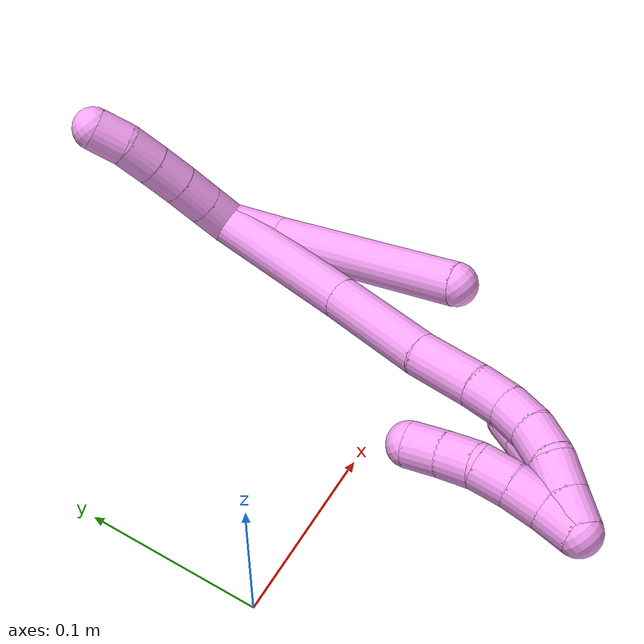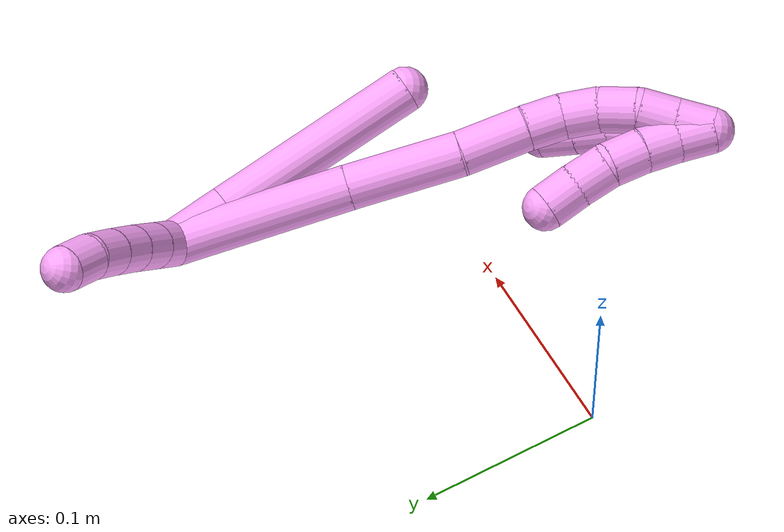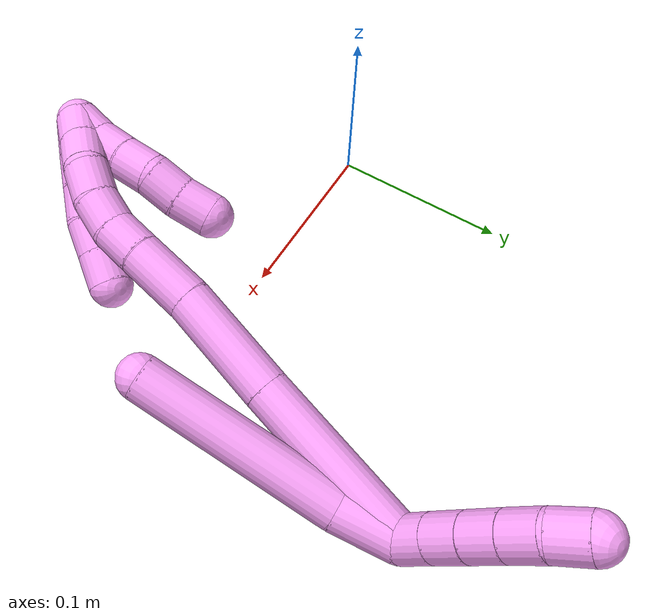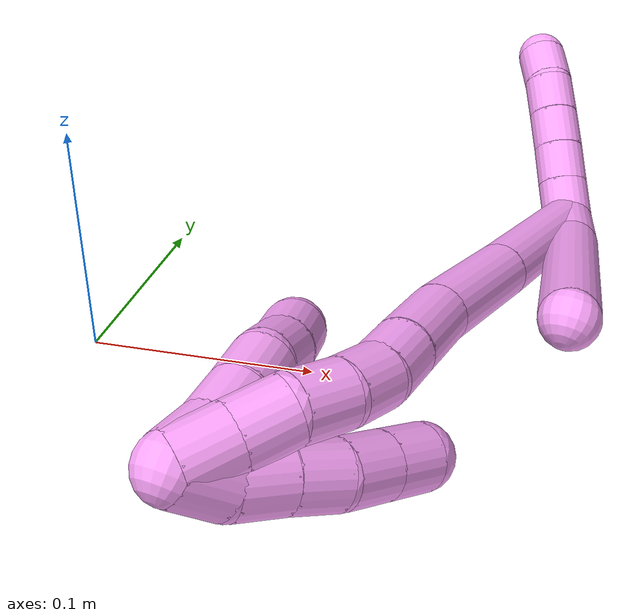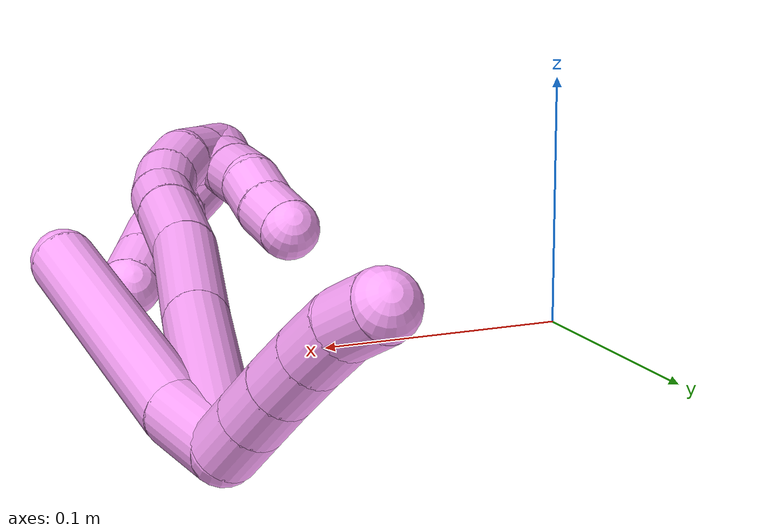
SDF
<sdf version="1.7">
 <world name="default">
  <model name="4">
   <static>0</static>
   <link name="4">
    <collision name="collision-cylinder-e_1_2_8">
     <pose>-0.000185 -0.012068 -0.012095 2.3573 -0.010851 -0.026236</pose>
     <geometry><cylinder><radius>0.0125</radius><length>0.034174</length></cylinder></geometry>
     <surface>
      <friction><ode><mu>1.16</mu><mu2>1.16</mu2><slip1>0</slip1><slip2>0</slip2></ode></friction>
      <contact><ode><kp>1e+06</kp><kd>1</kd><max_vel>0</max_vel><min_depth>0.001</min_depth></ode></contact>
     </surface>
    </collision>
    <visual name="visual-cylinder-e_1_2_8">
     <pose>-0.000185 -0.012068 -0.012095 2.3573 -0.010851 -0.026236</pose>
     <geometry><cylinder><radius>0.0125</radius><length>0.034174</length></cylinder></geometry>
     <material><ambient>1 0.65098 0.996078 1</ambient></material>
    </visual>
    <collision name="collision-cylinder-e_2_8_6">
     <pose>-0.008045 -0.068562 -0.060541 2.25658 -0.1329 -0.279057</pose>
     <geometry><cylinder><radius>0.0125</radius><length>0.115826</length></cylinder></geometry>
     <surface>
      <friction><ode><mu>1.16</mu><mu2>1.16</mu2><slip1>0</slip1><slip2>0</slip2></ode></friction>
      <contact><ode><kp>1e+06</kp><kd>1</kd><max_vel>0</max_vel><min_depth>0.001</min_depth></ode></contact>
     </surface>
    </collision>
    <visual name="visual-cylinder-e_2_8_6">
     <pose>-0.008045 -0.068562 -0.060541 2.25658 -0.1329 -0.279057</pose>
     <geometry><cylinder><radius>0.0125</radius><length>0.115826</length></cylinder></geometry>
     <material><ambient>1 0.65098 0.996078 1</ambient></material>
    </visual>
    <collision name="collision-cylinder-e_1_2_9">
     <pose>-0.00395 -0.00025 0.009183 0.027267 -0.406071 -0.005614</pose>
     <geometry><cylinder><radius>0.0125</radius><length>0.02</length></cylinder></geometry>
     <surface>
      <friction><ode><mu>1.16</mu><mu2>1.16</mu2><slip1>0</slip1><slip2>0</slip2></ode></friction>
      <contact><ode><kp>1e+06</kp><kd>1</kd><max_vel>0</max_vel><min_depth>0.001</min_depth></ode></contact>
     </surface>
    </collision>
    <visual name="visual-cylinder-e_1_2_9">
     <pose>-0.00395 -0.00025 0.009183 0.027267 -0.406071 -0.005614</pose>
     <geometry><cylinder><radius>0.0125</radius><length>0.02</length></cylinder></geometry>
     <material><ambient>1 0.65098 0.996078 1</ambient></material>
    </visual>
    <collision name="collision-cylinder-e_2_9_10">
     <pose>-0.011754 -0.00069 0.027592 0.020439 -0.395678 -0.004097</pose>
     <geometry><cylinder><radius>0.0125</radius><length>0.02</length></cylinder></geometry>
     <surface>
      <friction><ode><mu>1.16</mu><mu2>1.16</mu2><slip1>0</slip1><slip2>0</slip2></ode></friction>
      <contact><ode><kp>1e+06</kp><kd>1</kd><max_vel>0</max_vel><min_depth>0.001</min_depth></ode></contact>
     </surface>
    </collision>
    <visual name="visual-cylinder-e_2_9_10">
     <pose>-0.011754 -0.00069 0.027592 0.020439 -0.395678 -0.004097</pose>
     <geometry><cylinder><radius>0.0125</radius><length>0.02</length></cylinder></geometry>
     <material><ambient>1 0.65098 0.996078 1</ambient></material>
    </visual>
    <collision name="collision-cylinder-e_3_10_11">
     <pose>-0.01954 -0.000807 0.046012 -0.007706 -0.404037 0.001578</pose>
     <geometry><cylinder><radius>0.0125</radius><length>0.02</length></cylinder></geometry>
     <surface>
      <friction><ode><mu>1.16</mu><mu2>1.16</mu2><slip1>0</slip1><slip2>0</slip2></ode></friction>
      <contact><ode><kp>1e+06</kp><kd>1</kd><max_vel>0</max_vel><min_depth>0.001</min_depth></ode></contact>
     </surface>
    </collision>
    <visual name="visual-cylinder-e_3_10_11">
     <pose>-0.01954 -0.000807 0.046012 -0.007706 -0.404037 0.001578</pose>
     <geometry><cylinder><radius>0.0125</radius><length>0.02</length></cylinder></geometry>
     <material><ambient>1 0.65098 0.996078 1</ambient></material>
    </visual>
    <collision name="collision-cylinder-e_4_11_12">
     <pose>-0.027371 -0.000367 0.064408 -0.040104 -0.400566 0.008142</pose>
     <geometry><cylinder><radius>0.0125</radius><length>0.02</length></cylinder></geometry>
     <surface>
      <friction><ode><mu>1.16</mu><mu2>1.16</mu2><slip1>0</slip1><slip2>0</slip2></ode></friction>
      <contact><ode><kp>1e+06</kp><kd>1</kd><max_vel>0</max_vel><min_depth>0.001</min_depth></ode></contact>
     </surface>
    </collision>
    <visual name="visual-cylinder-e_4_11_12">
     <pose>-0.027371 -0.000367 0.064408 -0.040104 -0.400566 0.008142</pose>
     <geometry><cylinder><radius>0.0125</radius><length>0.02</length></cylinder></geometry>
     <material><ambient>1 0.65098 0.996078 1</ambient></material>
    </visual>
    <collision name="collision-cylinder-e_5_12_5">
     <pose>-0.034917 0.002508 0.082576 -0.272476 -0.3733 0.051766</pose>
     <geometry><cylinder><radius>0.0125</radius><length>0.02</length></cylinder></geometry>
     <surface>
      <friction><ode><mu>1.16</mu><mu2>1.16</mu2><slip1>0</slip1><slip2>0</slip2></ode></friction>
      <contact><ode><kp>1e+06</kp><kd>1</kd><max_vel>0</max_vel><min_depth>0.001</min_depth></ode></contact>
     </surface>
    </collision>
    <visual name="visual-cylinder-e_5_12_5">
     <pose>-0.034917 0.002508 0.082576 -0.272476 -0.3733 0.051766</pose>
     <geometry><cylinder><radius>0.0125</radius><length>0.02</length></cylinder></geometry>
     <material><ambient>1 0.65098 0.996078 1</ambient></material>
    </visual>
    <collision name="collision-cylinder-e_1_2_13">
     <pose>-0.018702 -0.03044 -0.033593 2.4054 -0.391274 -0.949309</pose>
     <geometry><cylinder><radius>0.0125</radius><length>0.098078</length></cylinder></geometry>
     <surface>
      <friction><ode><mu>1.16</mu><mu2>1.16</mu2><slip1>0</slip1><slip2>0</slip2></ode></friction>
      <contact><ode><kp>1e+06</kp><kd>1</kd><max_vel>0</max_vel><min_depth>0.001</min_depth></ode></contact>
     </surface>
    </collision>
    <visual name="visual-cylinder-e_1_2_13">
     <pose>-0.018702 -0.03044 -0.033593 2.4054 -0.391274 -0.949309</pose>
     <geometry><cylinder><radius>0.0125</radius><length>0.098078</length></cylinder></geometry>
     <material><ambient>1 0.65098 0.996078 1</ambient></material>
    </visual>
    <collision name="collision-cylinder-e_2_13_14">
     <pose>-0.04994 -0.080026 -0.088587 2.41173 -0.411637 -1.00025</pose>
     <geometry><cylinder><radius>0.0125</radius><length>0.062667</length></cylinder></geometry>
     <surface>
      <friction><ode><mu>1.16</mu><mu2>1.16</mu2><slip1>0</slip1><slip2>0</slip2></ode></friction>
      <contact><ode><kp>1e+06</kp><kd>1</kd><max_vel>0</max_vel><min_depth>0.001</min_depth></ode></contact>
     </surface>
    </collision>
    <visual name="visual-cylinder-e_2_13_14">
     <pose>-0.04994 -0.080026 -0.088587 2.41173 -0.411637 -1.00025</pose>
     <geometry><cylinder><radius>0.0125</radius><length>0.062667</length></cylinder></geometry>
     <material><ambient>1 0.65098 0.996078 1</ambient></material>
    </visual>
    <collision name="collision-cylinder-e_3_14_15">
     <pose>-0.068092 -0.111199 -0.122951 2.39366 -0.307436 -0.752066</pose>
     <geometry><cylinder><radius>0.0125</radius><length>0.037105</length></cylinder></geometry>
     <surface>
      <friction><ode><mu>1.16</mu><mu2>1.16</mu2><slip1>0</slip1><slip2>0</slip2></ode></friction>
      <contact><ode><kp>1e+06</kp><kd>1</kd><max_vel>0</max_vel><min_depth>0.001</min_depth></ode></contact>
     </surface>
    </collision>
    <visual name="visual-cylinder-e_3_14_15">
     <pose>-0.068092 -0.111199 -0.122951 2.39366 -0.307436 -0.752066</pose>
     <geometry><cylinder><radius>0.0125</radius><length>0.037105</length></cylinder></geometry>
     <material><ambient>1 0.65098 0.996078 1</ambient></material>
    </visual>
    <collision name="collision-cylinder-e_4_15_16">
     <pose>-0.076969 -0.129479 -0.143641 2.46125 -0.317216 -0.848922</pose>
     <geometry><cylinder><radius>0.0125</radius><length>0.020924</length></cylinder></geometry>
     <surface>
      <friction><ode><mu>1.16</mu><mu2>1.16</mu2><slip1>0</slip1><slip2>0</slip2></ode></friction>
      <contact><ode><kp>1e+06</kp><kd>1</kd><max_vel>0</max_vel><min_depth>0.001</min_depth></ode></contact>
     </surface>
    </collision>
    <visual name="visual-cylinder-e_4_15_16">
     <pose>-0.076969 -0.129479 -0.143641 2.46125 -0.317216 -0.848922</pose>
     <geometry><cylinder><radius>0.0125</radius><length>0.020924</length></cylinder></geometry>
     <material><ambient>1 0.65098 0.996078 1</ambient></material>
    </visual>
    <collision name="collision-cylinder-e_5_16_17">
     <pose>-0.085562 -0.14124 -0.157981 2.44706 -0.554446 -1.33252</pose>
     <geometry><cylinder><radius>0.0125</radius><length>0.020247</length></cylinder></geometry>
     <surface>
      <friction><ode><mu>1.16</mu><mu2>1.16</mu2><slip1>0</slip1><slip2>0</slip2></ode></friction>
      <contact><ode><kp>1e+06</kp><kd>1</kd><max_vel>0</max_vel><min_depth>0.001</min_depth></ode></contact>
     </surface>
    </collision>
    <visual name="visual-cylinder-e_5_16_17">
     <pose>-0.085562 -0.14124 -0.157981 2.44706 -0.554446 -1.33252</pose>
     <geometry><cylinder><radius>0.0125</radius><length>0.020247</length></cylinder></geometry>
     <material><ambient>1 0.65098 0.996078 1</ambient></material>
    </visual>
    <collision name="collision-cylinder-e_6_17_18">
     <pose>-0.098031 -0.150857 -0.170982 2.57 -0.754536 -1.86545</pose>
     <geometry><cylinder><radius>0.0125</radius><length>0.020847</length></cylinder></geometry>
     <surface>
      <friction><ode><mu>1.16</mu><mu2>1.16</mu2><slip1>0</slip1><slip2>0</slip2></ode></friction>
      <contact><ode><kp>1e+06</kp><kd>1</kd><max_vel>0</max_vel><min_depth>0.001</min_depth></ode></contact>
     </surface>
    </collision>
    <visual name="visual-cylinder-e_6_17_18">
     <pose>-0.098031 -0.150857 -0.170982 2.57 -0.754536 -1.86545</pose>
     <geometry><cylinder><radius>0.0125</radius><length>0.020847</length></cylinder></geometry>
     <material><ambient>1 0.65098 0.996078 1</ambient></material>
    </visual>
    <collision name="collision-cylinder-e_7_18_19">
     <pose>-0.111808 -0.156167 -0.184782 2.98089 -0.723803 -2.72244</pose>
     <geometry><cylinder><radius>0.0125</radius><length>0.020044</length></cylinder></geometry>
     <surface>
      <friction><ode><mu>1.16</mu><mu2>1.16</mu2><slip1>0</slip1><slip2>0</slip2></ode></friction>
      <contact><ode><kp>1e+06</kp><kd>1</kd><max_vel>0</max_vel><min_depth>0.001</min_depth></ode></contact>
     </surface>
    </collision>
    <visual name="visual-cylinder-e_7_18_19">
     <pose>-0.111808 -0.156167 -0.184782 2.98089 -0.723803 -2.72244</pose>
     <geometry><cylinder><radius>0.0125</radius><length>0.020044</length></cylinder></geometry>
     <material><ambient>1 0.65098 0.996078 1</ambient></material>
    </visual>
    <collision name="collision-cylinder-e_8_19_1">
     <pose>-0.125084 -0.158698 -0.199613 2.96426 -0.72218 -2.67921</pose>
     <geometry><cylinder><radius>0.0125</radius><length>0.020089</length></cylinder></geometry>
     <surface>
      <friction><ode><mu>1.16</mu><mu2>1.16</mu2><slip1>0</slip1><slip2>0</slip2></ode></friction>
      <contact><ode><kp>1e+06</kp><kd>1</kd><max_vel>0</max_vel><min_depth>0.001</min_depth></ode></contact>
     </surface>
    </collision>
    <visual name="visual-cylinder-e_8_19_1">
     <pose>-0.125084 -0.158698 -0.199613 2.96426 -0.72218 -2.67921</pose>
     <geometry><cylinder><radius>0.0125</radius><length>0.020089</length></cylinder></geometry>
     <material><ambient>1 0.65098 0.996078 1</ambient></material>
    </visual>
    <collision name="collision-cylinder-e_1_1_20">
     <pose>-0.128371 -0.154489 -0.199411 -0.628499 0.341946 -0.112117</pose>
     <geometry><cylinder><radius>0.0125</radius><length>0.02</length></cylinder></geometry>
     <surface>
      <friction><ode><mu>1.16</mu><mu2>1.16</mu2><slip1>0</slip1><slip2>0</slip2></ode></friction>
      <contact><ode><kp>1e+06</kp><kd>1</kd><max_vel>0</max_vel><min_depth>0.001</min_depth></ode></contact>
     </surface>
    </collision>
    <visual name="visual-cylinder-e_1_1_20">
     <pose>-0.128371 -0.154489 -0.199411 -0.628499 0.341946 -0.112117</pose>
     <geometry><cylinder><radius>0.0125</radius><length>0.02</length></cylinder></geometry>
     <material><ambient>1 0.65098 0.996078 1</ambient></material>
    </visual>
    <collision name="collision-cylinder-e_2_20_21">
     <pose>-0.123109 -0.143611 -0.183553 -0.575069 0.192075 -0.056962</pose>
     <geometry><cylinder><radius>0.0125</radius><length>0.02</length></cylinder></geometry>
     <surface>
      <friction><ode><mu>1.16</mu><mu2>1.16</mu2><slip1>0</slip1><slip2>0</slip2></ode></friction>
      <contact><ode><kp>1e+06</kp><kd>1</kd><max_vel>0</max_vel><min_depth>0.001</min_depth></ode></contact>
     </surface>
    </collision>
    <visual name="visual-cylinder-e_2_20_21">
     <pose>-0.123109 -0.143611 -0.183553 -0.575069 0.192075 -0.056962</pose>
     <geometry><cylinder><radius>0.0125</radius><length>0.02</length></cylinder></geometry>
     <material><ambient>1 0.65098 0.996078 1</ambient></material>
    </visual>
    <collision name="collision-cylinder-e_3_21_22">
     <pose>-0.11976 -0.132276 -0.167443 -0.650849 0.144457 -0.048818</pose>
     <geometry><cylinder><radius>0.0125</radius><length>0.02</length></cylinder></geometry>
     <surface>
      <friction><ode><mu>1.16</mu><mu2>1.16</mu2><slip1>0</slip1><slip2>0</slip2></ode></friction>
      <contact><ode><kp>1e+06</kp><kd>1</kd><max_vel>0</max_vel><min_depth>0.001</min_depth></ode></contact>
     </surface>
    </collision>
    <visual name="visual-cylinder-e_3_21_22">
     <pose>-0.11976 -0.132276 -0.167443 -0.650849 0.144457 -0.048818</pose>
     <geometry><cylinder><radius>0.0125</radius><length>0.02</length></cylinder></geometry>
     <material><ambient>1 0.65098 0.996078 1</ambient></material>
    </visual>
    <collision name="collision-cylinder-e_4_22_23">
     <pose>-0.116096 -0.118389 -0.153846 -0.943277 0.22433 -0.114771</pose>
     <geometry><cylinder><radius>0.0125</radius><length>0.02</length></cylinder></geometry>
     <surface>
      <friction><ode><mu>1.16</mu><mu2>1.16</mu2><slip1>0</slip1><slip2>0</slip2></ode></friction>
      <contact><ode><kp>1e+06</kp><kd>1</kd><max_vel>0</max_vel><min_depth>0.001</min_depth></ode></contact>
     </surface>
    </collision>
    <visual name="visual-cylinder-e_4_22_23">
     <pose>-0.116096 -0.118389 -0.153846 -0.943277 0.22433 -0.114771</pose>
     <geometry><cylinder><radius>0.0125</radius><length>0.02</length></cylinder></geometry>
     <material><ambient>1 0.65098 0.996078 1</ambient></material>
    </visual>
    <collision name="collision-cylinder-e_5_23_4">
     <pose>-0.113006 -0.102767 -0.141836 -0.888128 0.08666 -0.041249</pose>
     <geometry><cylinder><radius>0.0125</radius><length>0.02</length></cylinder></geometry>
     <surface>
      <friction><ode><mu>1.16</mu><mu2>1.16</mu2><slip1>0</slip1><slip2>0</slip2></ode></friction>
      <contact><ode><kp>1e+06</kp><kd>1</kd><max_vel>0</max_vel><min_depth>0.001</min_depth></ode></contact>
     </surface>
    </collision>
    <visual name="visual-cylinder-e_5_23_4">
     <pose>-0.113006 -0.102767 -0.141836 -0.888128 0.08666 -0.041249</pose>
     <geometry><cylinder><radius>0.0125</radius><length>0.02</length></cylinder></geometry>
     <material><ambient>1 0.65098 0.996078 1</ambient></material>
    </visual>
    <collision name="collision-cylinder-e_1_1_24">
     <pose>-0.12326 -0.154895 -0.205609 -1.30037 1.00908 -0.795178</pose>
     <geometry><cylinder><radius>0.0125</radius><length>0.02</length></cylinder></geometry>
     <surface>
      <friction><ode><mu>1.16</mu><mu2>1.16</mu2><slip1>0</slip1><slip2>0</slip2></ode></friction>
      <contact><ode><kp>1e+06</kp><kd>1</kd><max_vel>0</max_vel><min_depth>0.001</min_depth></ode></contact>
     </surface>
    </collision>
    <visual name="visual-cylinder-e_1_1_24">
     <pose>-0.12326 -0.154895 -0.205609 -1.30037 1.00908 -0.795178</pose>
     <geometry><cylinder><radius>0.0125</radius><length>0.02</length></cylinder></geometry>
     <material><ambient>1 0.65098 0.996078 1</ambient></material>
    </visual>
    <collision name="collision-cylinder-e_2_24_25">
     <pose>-0.106641 -0.146083 -0.199719 -0.688988 0.9537 -0.366563</pose>
     <geometry><cylinder><radius>0.0125</radius><length>0.02</length></cylinder></geometry>
     <surface>
      <friction><ode><mu>1.16</mu><mu2>1.16</mu2><slip1>0</slip1><slip2>0</slip2></ode></friction>
      <contact><ode><kp>1e+06</kp><kd>1</kd><max_vel>0</max_vel><min_depth>0.001</min_depth></ode></contact>
     </surface>
    </collision>
    <visual name="visual-cylinder-e_2_24_25">
     <pose>-0.106641 -0.146083 -0.199719 -0.688988 0.9537 -0.366563</pose>
     <geometry><cylinder><radius>0.0125</radius><length>0.02</length></cylinder></geometry>
     <material><ambient>1 0.65098 0.996078 1</ambient></material>
    </visual>
    <collision name="collision-cylinder-e_3_25_26">
     <pose>-0.090236 -0.138435 -0.191229 -0.778605 0.970164 -0.425908</pose>
     <geometry><cylinder><radius>0.0125</radius><length>0.02</length></cylinder></geometry>
     <surface>
      <friction><ode><mu>1.16</mu><mu2>1.16</mu2><slip1>0</slip1><slip2>0</slip2></ode></friction>
      <contact><ode><kp>1e+06</kp><kd>1</kd><max_vel>0</max_vel><min_depth>0.001</min_depth></ode></contact>
     </surface>
    </collision>
    <visual name="visual-cylinder-e_3_25_26">
     <pose>-0.090236 -0.138435 -0.191229 -0.778605 0.970164 -0.425908</pose>
     <geometry><cylinder><radius>0.0125</radius><length>0.02</length></cylinder></geometry>
     <material><ambient>1 0.65098 0.996078 1</ambient></material>
    </visual>
    <collision name="collision-cylinder-e_4_26_27">
     <pose>-0.075034 -0.129266 -0.182242 -0.808664 0.768679 -0.342743</pose>
     <geometry><cylinder><radius>0.0125</radius><length>0.02</length></cylinder></geometry>
     <surface>
      <friction><ode><mu>1.16</mu><mu2>1.16</mu2><slip1>0</slip1><slip2>0</slip2></ode></friction>
      <contact><ode><kp>1e+06</kp><kd>1</kd><max_vel>0</max_vel><min_depth>0.001</min_depth></ode></contact>
     </surface>
    </collision>
    <visual name="visual-cylinder-e_4_26_27">
     <pose>-0.075034 -0.129266 -0.182242 -0.808664 0.768679 -0.342743</pose>
     <geometry><cylinder><radius>0.0125</radius><length>0.02</length></cylinder></geometry>
     <material><ambient>1 0.65098 0.996078 1</ambient></material>
    </visual>
    <collision name="collision-cylinder-e_5_27_3">
     <pose>-0.061087 -0.118968 -0.172272 -0.794401 0.774723 -0.339003</pose>
     <geometry><cylinder><radius>0.0125</radius><length>0.02</length></cylinder></geometry>
     <surface>
      <friction><ode><mu>1.16</mu><mu2>1.16</mu2><slip1>0</slip1><slip2>0</slip2></ode></friction>
      <contact><ode><kp>1e+06</kp><kd>1</kd><max_vel>0</max_vel><min_depth>0.001</min_depth></ode></contact>
     </surface>
    </collision>
    <visual name="visual-cylinder-e_5_27_3">
     <pose>-0.061087 -0.118968 -0.172272 -0.794401 0.774723 -0.339003</pose>
     <geometry><cylinder><radius>0.0125</radius><length>0.02</length></cylinder></geometry>
     <material><ambient>1 0.65098 0.996078 1</ambient></material>
    </visual>
    <collision name="collision-sphere-3">
     <pose>-0.054092 -0.11387 -0.167264 0 -0 0</pose>
     <geometry><sphere><radius>0.0125</radius></sphere></geometry>
     <surface>
      <friction><ode><mu>1.16</mu><mu2>1.16</mu2><slip1>0</slip1><slip2>0</slip2></ode></friction>
      <contact><ode><kp>1e+06</kp><kd>1</kd><max_vel>0</max_vel><min_depth>0.001</min_depth></ode></contact>
     </surface>
    </collision>
    <visual name="visual-sphere-3">
     <pose>-0.054092 -0.11387 -0.167264 0 -0 0</pose>
     <geometry><sphere><radius>0.0125</radius></sphere></geometry>
     <material><ambient>1 0.65098 0.996078 1</ambient></material>
    </visual>
    <collision name="collision-sphere-27">
     <pose>-0.068083 -0.124066 -0.177279 0 -0 0</pose>
     <geometry><sphere><radius>0.0125</radius></sphere></geometry>
     <surface>
      <friction><ode><mu>1.16</mu><mu2>1.16</mu2><slip1>0</slip1><slip2>0</slip2></ode></friction>
      <contact><ode><kp>1e+06</kp><kd>1</kd><max_vel>0</max_vel><min_depth>0.001</min_depth></ode></contact>
     </surface>
    </collision>
    <visual name="visual-sphere-27">
     <pose>-0.068083 -0.124066 -0.177279 0 -0 0</pose>
     <geometry><sphere><radius>0.0125</radius></sphere></geometry>
     <material><ambient>1 0.65098 0.996078 1</ambient></material>
    </visual>
    <collision name="collision-sphere-26">
     <pose>-0.081986 -0.134466 -0.187206 0 -0 0</pose>
     <geometry><sphere><radius>0.0125</radius></sphere></geometry>
     <surface>
      <friction><ode><mu>1.16</mu><mu2>1.16</mu2><slip1>0</slip1><slip2>0</slip2></ode></friction>
      <contact><ode><kp>1e+06</kp><kd>1</kd><max_vel>0</max_vel><min_depth>0.001</min_depth></ode></contact>
     </surface>
    </collision>
    <visual name="visual-sphere-26">
     <pose>-0.081986 -0.134466 -0.187206 0 -0 0</pose>
     <geometry><sphere><radius>0.0125</radius></sphere></geometry>
     <material><ambient>1 0.65098 0.996078 1</ambient></material>
    </visual>
    <collision name="collision-sphere-25">
     <pose>-0.098486 -0.142404 -0.195252 0 -0 0</pose>
     <geometry><sphere><radius>0.0125</radius></sphere></geometry>
     <surface>
      <friction><ode><mu>1.16</mu><mu2>1.16</mu2><slip1>0</slip1><slip2>0</slip2></ode></friction>
      <contact><ode><kp>1e+06</kp><kd>1</kd><max_vel>0</max_vel><min_depth>0.001</min_depth></ode></contact>
     </surface>
    </collision>
    <visual name="visual-sphere-25">
     <pose>-0.098486 -0.142404 -0.195252 0 -0 0</pose>
     <geometry><sphere><radius>0.0125</radius></sphere></geometry>
     <material><ambient>1 0.65098 0.996078 1</ambient></material>
    </visual>
    <collision name="collision-sphere-24">
     <pose>-0.114797 -0.149762 -0.204186 0 -0 0</pose>
     <geometry><sphere><radius>0.0125</radius></sphere></geometry>
     <surface>
      <friction><ode><mu>1.16</mu><mu2>1.16</mu2><slip1>0</slip1><slip2>0</slip2></ode></friction>
      <contact><ode><kp>1e+06</kp><kd>1</kd><max_vel>0</max_vel><min_depth>0.001</min_depth></ode></contact>
     </surface>
    </collision>
    <visual name="visual-sphere-24">
     <pose>-0.114797 -0.149762 -0.204186 0 -0 0</pose>
     <geometry><sphere><radius>0.0125</radius></sphere></geometry>
     <material><ambient>1 0.65098 0.996078 1</ambient></material>
    </visual>
    <collision name="collision-sphere-4">
     <pose>-0.11214 -0.095037 -0.135551 0 -0 0</pose>
     <geometry><sphere><radius>0.0125</radius></sphere></geometry>
     <surface>
      <friction><ode><mu>1.16</mu><mu2>1.16</mu2><slip1>0</slip1><slip2>0</slip2></ode></friction>
      <contact><ode><kp>1e+06</kp><kd>1</kd><max_vel>0</max_vel><min_depth>0.001</min_depth></ode></contact>
     </surface>
    </collision>
    <visual name="visual-sphere-4">
     <pose>-0.11214 -0.095037 -0.135551 0 -0 0</pose>
     <geometry><sphere><radius>0.0125</radius></sphere></geometry>
     <material><ambient>1 0.65098 0.996078 1</ambient></material>
    </visual>
    <collision name="collision-sphere-23">
     <pose>-0.113871 -0.110497 -0.148121 0 -0 0</pose>
     <geometry><sphere><radius>0.0125</radius></sphere></geometry>
     <surface>
      <friction><ode><mu>1.16</mu><mu2>1.16</mu2><slip1>0</slip1><slip2>0</slip2></ode></friction>
      <contact><ode><kp>1e+06</kp><kd>1</kd><max_vel>0</max_vel><min_depth>0.001</min_depth></ode></contact>
     </surface>
    </collision>
    <visual name="visual-sphere-23">
     <pose>-0.113871 -0.110497 -0.148121 0 -0 0</pose>
     <geometry><sphere><radius>0.0125</radius></sphere></geometry>
     <material><ambient>1 0.65098 0.996078 1</ambient></material>
    </visual>
    <collision name="collision-sphere-22">
     <pose>-0.11832 -0.126281 -0.15957 0 -0 0</pose>
     <geometry><sphere><radius>0.0125</radius></sphere></geometry>
     <surface>
      <friction><ode><mu>1.16</mu><mu2>1.16</mu2><slip1>0</slip1><slip2>0</slip2></ode></friction>
      <contact><ode><kp>1e+06</kp><kd>1</kd><max_vel>0</max_vel><min_depth>0.001</min_depth></ode></contact>
     </surface>
    </collision>
    <visual name="visual-sphere-22">
     <pose>-0.11832 -0.126281 -0.15957 0 -0 0</pose>
     <geometry><sphere><radius>0.0125</radius></sphere></geometry>
     <material><ambient>1 0.65098 0.996078 1</ambient></material>
    </visual>
    <collision name="collision-sphere-21">
     <pose>-0.1212 -0.138272 -0.175316 0 -0 0</pose>
     <geometry><sphere><radius>0.0125</radius></sphere></geometry>
     <surface>
      <friction><ode><mu>1.16</mu><mu2>1.16</mu2><slip1>0</slip1><slip2>0</slip2></ode></friction>
      <contact><ode><kp>1e+06</kp><kd>1</kd><max_vel>0</max_vel><min_depth>0.001</min_depth></ode></contact>
     </surface>
    </collision>
    <visual name="visual-sphere-21">
     <pose>-0.1212 -0.138272 -0.175316 0 -0 0</pose>
     <geometry><sphere><radius>0.0125</radius></sphere></geometry>
     <material><ambient>1 0.65098 0.996078 1</ambient></material>
    </visual>
    <collision name="collision-sphere-20">
     <pose>-0.125017 -0.14895 -0.19179 0 -0 0</pose>
     <geometry><sphere><radius>0.0125</radius></sphere></geometry>
     <surface>
      <friction><ode><mu>1.16</mu><mu2>1.16</mu2><slip1>0</slip1><slip2>0</slip2></ode></friction>
      <contact><ode><kp>1e+06</kp><kd>1</kd><max_vel>0</max_vel><min_depth>0.001</min_depth></ode></contact>
     </surface>
    </collision>
    <visual name="visual-sphere-20">
     <pose>-0.125017 -0.14895 -0.19179 0 -0 0</pose>
     <geometry><sphere><radius>0.0125</radius></sphere></geometry>
     <material><ambient>1 0.65098 0.996078 1</ambient></material>
    </visual>
    <collision name="collision-sphere-11">
     <pose>-0.023471 -0.000736 0.055207 0 -0 0</pose>
     <geometry><sphere><radius>0.0125</radius></sphere></geometry>
     <surface>
      <friction><ode><mu>1.16</mu><mu2>1.16</mu2><slip1>0</slip1><slip2>0</slip2></ode></friction>
      <contact><ode><kp>1e+06</kp><kd>1</kd><max_vel>0</max_vel><min_depth>0.001</min_depth></ode></contact>
     </surface>
    </collision>
    <visual name="visual-sphere-11">
     <pose>-0.023471 -0.000736 0.055207 0 -0 0</pose>
     <geometry><sphere><radius>0.0125</radius></sphere></geometry>
     <material><ambient>1 0.65098 0.996078 1</ambient></material>
    </visual>
    <collision name="collision-sphere-10">
     <pose>-0.015609 -0.000878 0.036818 0 -0 0</pose>
     <geometry><sphere><radius>0.0125</radius></sphere></geometry>
     <surface>
      <friction><ode><mu>1.16</mu><mu2>1.16</mu2><slip1>0</slip1><slip2>0</slip2></ode></friction>
      <contact><ode><kp>1e+06</kp><kd>1</kd><max_vel>0</max_vel><min_depth>0.001</min_depth></ode></contact>
     </surface>
    </collision>
    <visual name="visual-sphere-10">
     <pose>-0.015609 -0.000878 0.036818 0 -0 0</pose>
     <geometry><sphere><radius>0.0125</radius></sphere></geometry>
     <material><ambient>1 0.65098 0.996078 1</ambient></material>
    </visual>
    <collision name="collision-sphere-6">
     <pose>-0.015719 -0.112987 -0.096893 0 -0 0</pose>
     <geometry><sphere><radius>0.0125</radius></sphere></geometry>
     <surface>
      <friction><ode><mu>1.16</mu><mu2>1.16</mu2><slip1>0</slip1><slip2>0</slip2></ode></friction>
      <contact><ode><kp>1e+06</kp><kd>1</kd><max_vel>0</max_vel><min_depth>0.001</min_depth></ode></contact>
     </surface>
    </collision>
    <visual name="visual-sphere-6">
     <pose>-0.015719 -0.112987 -0.096893 0 -0 0</pose>
     <geometry><sphere><radius>0.0125</radius></sphere></geometry>
     <material><ambient>1 0.65098 0.996078 1</ambient></material>
    </visual>
    <collision name="collision-sphere-9">
     <pose>-0.0079 -0.000501 0.018367 0 -0 0</pose>
     <geometry><sphere><radius>0.0125</radius></sphere></geometry>
     <surface>
      <friction><ode><mu>1.16</mu><mu2>1.16</mu2><slip1>0</slip1><slip2>0</slip2></ode></friction>
      <contact><ode><kp>1e+06</kp><kd>1</kd><max_vel>0</max_vel><min_depth>0.001</min_depth></ode></contact>
     </surface>
    </collision>
    <visual name="visual-sphere-9">
     <pose>-0.0079 -0.000501 0.018367 0 -0 0</pose>
     <geometry><sphere><radius>0.0125</radius></sphere></geometry>
     <material><ambient>1 0.65098 0.996078 1</ambient></material>
    </visual>
    <collision name="collision-sphere-2">
     <geometry><sphere><radius>0.0125</radius></sphere></geometry>
     <surface>
      <friction><ode><mu>1.16</mu><mu2>1.16</mu2><slip1>0</slip1><slip2>0</slip2></ode></friction>
      <contact><ode><kp>1e+06</kp><kd>1</kd><max_vel>0</max_vel><min_depth>0.001</min_depth></ode></contact>
     </surface>
    </collision>
    <visual name="visual-sphere-2">
     <geometry><sphere><radius>0.0125</radius></sphere></geometry>
     <material><ambient>1 0.65098 0.996078 1</ambient></material>
    </visual>
    <collision name="collision-sphere-19">
     <pose>-0.118445 -0.157369 -0.192194 0 -0 0</pose>
     <geometry><sphere><radius>0.0125</radius></sphere></geometry>
     <surface>
      <friction><ode><mu>1.16</mu><mu2>1.16</mu2><slip1>0</slip1><slip2>0</slip2></ode></friction>
      <contact><ode><kp>1e+06</kp><kd>1</kd><max_vel>0</max_vel><min_depth>0.001</min_depth></ode></contact>
     </surface>
    </collision>
    <visual name="visual-sphere-19">
     <pose>-0.118445 -0.157369 -0.192194 0 -0 0</pose>
     <geometry><sphere><radius>0.0125</radius></sphere></geometry>
     <material><ambient>1 0.65098 0.996078 1</ambient></material>
    </visual>
    <collision name="collision-sphere-8">
     <pose>-0.000371 -0.024136 -0.02419 0 -0 0</pose>
     <geometry><sphere><radius>0.0125</radius></sphere></geometry>
     <surface>
      <friction><ode><mu>1.16</mu><mu2>1.16</mu2><slip1>0</slip1><slip2>0</slip2></ode></friction>
      <contact><ode><kp>1e+06</kp><kd>1</kd><max_vel>0</max_vel><min_depth>0.001</min_depth></ode></contact>
     </surface>
    </collision>
    <visual name="visual-sphere-8">
     <pose>-0.000371 -0.024136 -0.02419 0 -0 0</pose>
     <geometry><sphere><radius>0.0125</radius></sphere></geometry>
     <material><ambient>1 0.65098 0.996078 1</ambient></material>
    </visual>
    <collision name="collision-sphere-12">
     <pose>-0.03127 2e-06 0.073609 0 -0 0</pose>
     <geometry><sphere><radius>0.0125</radius></sphere></geometry>
     <surface>
      <friction><ode><mu>1.16</mu><mu2>1.16</mu2><slip1>0</slip1><slip2>0</slip2></ode></friction>
      <contact><ode><kp>1e+06</kp><kd>1</kd><max_vel>0</max_vel><min_depth>0.001</min_depth></ode></contact>
     </surface>
    </collision>
    <visual name="visual-sphere-12">
     <pose>-0.03127 2e-06 0.073609 0 -0 0</pose>
     <geometry><sphere><radius>0.0125</radius></sphere></geometry>
     <material><ambient>1 0.65098 0.996078 1</ambient></material>
    </visual>
    <collision name="collision-sphere-5">
     <pose>-0.038564 0.005014 0.091544 0 -0 0</pose>
     <geometry><sphere><radius>0.0125</radius></sphere></geometry>
     <surface>
      <friction><ode><mu>1.16</mu><mu2>1.16</mu2><slip1>0</slip1><slip2>0</slip2></ode></friction>
      <contact><ode><kp>1e+06</kp><kd>1</kd><max_vel>0</max_vel><min_depth>0.001</min_depth></ode></contact>
     </surface>
    </collision>
    <visual name="visual-sphere-5">
     <pose>-0.038564 0.005014 0.091544 0 -0 0</pose>
     <geometry><sphere><radius>0.0125</radius></sphere></geometry>
     <material><ambient>1 0.65098 0.996078 1</ambient></material>
    </visual>
    <collision name="collision-sphere-13">
     <pose>-0.037404 -0.060879 -0.067186 0 -0 0</pose>
     <geometry><sphere><radius>0.0125</radius></sphere></geometry>
     <surface>
      <friction><ode><mu>1.16</mu><mu2>1.16</mu2><slip1>0</slip1><slip2>0</slip2></ode></friction>
      <contact><ode><kp>1e+06</kp><kd>1</kd><max_vel>0</max_vel><min_depth>0.001</min_depth></ode></contact>
     </surface>
    </collision>
    <visual name="visual-sphere-13">
     <pose>-0.037404 -0.060879 -0.067186 0 -0 0</pose>
     <geometry><sphere><radius>0.0125</radius></sphere></geometry>
     <material><ambient>1 0.65098 0.996078 1</ambient></material>
    </visual>
    <collision name="collision-sphere-14">
     <pose>-0.062477 -0.099173 -0.109988 0 -0 0</pose>
     <geometry><sphere><radius>0.0125</radius></sphere></geometry>
     <surface>
      <friction><ode><mu>1.16</mu><mu2>1.16</mu2><slip1>0</slip1><slip2>0</slip2></ode></friction>
      <contact><ode><kp>1e+06</kp><kd>1</kd><max_vel>0</max_vel><min_depth>0.001</min_depth></ode></contact>
     </surface>
    </collision>
    <visual name="visual-sphere-14">
     <pose>-0.062477 -0.099173 -0.109988 0 -0 0</pose>
     <geometry><sphere><radius>0.0125</radius></sphere></geometry>
     <material><ambient>1 0.65098 0.996078 1</ambient></material>
    </visual>
    <collision name="collision-sphere-15">
     <pose>-0.073706 -0.123226 -0.135915 0 -0 0</pose>
     <geometry><sphere><radius>0.0125</radius></sphere></geometry>
     <surface>
      <friction><ode><mu>1.16</mu><mu2>1.16</mu2><slip1>0</slip1><slip2>0</slip2></ode></friction>
      <contact><ode><kp>1e+06</kp><kd>1</kd><max_vel>0</max_vel><min_depth>0.001</min_depth></ode></contact>
     </surface>
    </collision>
    <visual name="visual-sphere-15">
     <pose>-0.073706 -0.123226 -0.135915 0 -0 0</pose>
     <geometry><sphere><radius>0.0125</radius></sphere></geometry>
     <material><ambient>1 0.65098 0.996078 1</ambient></material>
    </visual>
    <collision name="collision-sphere-16">
     <pose>-0.080233 -0.135731 -0.151368 0 -0 0</pose>
     <geometry><sphere><radius>0.0125</radius></sphere></geometry>
     <surface>
      <friction><ode><mu>1.16</mu><mu2>1.16</mu2><slip1>0</slip1><slip2>0</slip2></ode></friction>
      <contact><ode><kp>1e+06</kp><kd>1</kd><max_vel>0</max_vel><min_depth>0.001</min_depth></ode></contact>
     </surface>
    </collision>
    <visual name="visual-sphere-16">
     <pose>-0.080233 -0.135731 -0.151368 0 -0 0</pose>
     <geometry><sphere><radius>0.0125</radius></sphere></geometry>
     <material><ambient>1 0.65098 0.996078 1</ambient></material>
    </visual>
    <collision name="collision-sphere-17">
     <pose>-0.090892 -0.146749 -0.164595 0 -0 0</pose>
     <geometry><sphere><radius>0.0125</radius></sphere></geometry>
     <surface>
      <friction><ode><mu>1.16</mu><mu2>1.16</mu2><slip1>0</slip1><slip2>0</slip2></ode></friction>
      <contact><ode><kp>1e+06</kp><kd>1</kd><max_vel>0</max_vel><min_depth>0.001</min_depth></ode></contact>
     </surface>
    </collision>
    <visual name="visual-sphere-17">
     <pose>-0.090892 -0.146749 -0.164595 0 -0 0</pose>
     <geometry><sphere><radius>0.0125</radius></sphere></geometry>
     <material><ambient>1 0.65098 0.996078 1</ambient></material>
    </visual>
    <collision name="collision-sphere-18">
     <pose>-0.105171 -0.154965 -0.177369 0 -0 0</pose>
     <geometry><sphere><radius>0.0125</radius></sphere></geometry>
     <surface>
      <friction><ode><mu>1.16</mu><mu2>1.16</mu2><slip1>0</slip1><slip2>0</slip2></ode></friction>
      <contact><ode><kp>1e+06</kp><kd>1</kd><max_vel>0</max_vel><min_depth>0.001</min_depth></ode></contact>
     </surface>
    </collision>
    <visual name="visual-sphere-18">
     <pose>-0.105171 -0.154965 -0.177369 0 -0 0</pose>
     <geometry><sphere><radius>0.0125</radius></sphere></geometry>
     <material><ambient>1 0.65098 0.996078 1</ambient></material>
    </visual>
    <collision name="collision-sphere-1">
     <pose>-0.131724 -0.160028 -0.207032 0 -0 0</pose>
     <geometry><sphere><radius>0.0125</radius></sphere></geometry>
     <surface>
      <friction><ode><mu>1.16</mu><mu2>1.16</mu2><slip1>0</slip1><slip2>0</slip2></ode></friction>
      <contact><ode><kp>1e+06</kp><kd>1</kd><max_vel>0</max_vel><min_depth>0.001</min_depth></ode></contact>
     </surface>
    </collision>
    <visual name="visual-sphere-1">
     <pose>-0.131724 -0.160028 -0.207032 0 -0 0</pose>
     <geometry><sphere><radius>0.0125</radius></sphere></geometry>
     <material><ambient>1 0.65098 0.996078 1</ambient></material>
    </visual>
    <inertial>
     <pose>-0.055535 -0.08305 -0.092885 0 -0 0</pose>
     <mass>0.75</mass>
     <inertia>
      <ixx>7.5e-05</ixx>
      <ixy>0</ixy>
      <ixz>0</ixz>
      <iyy>-0.000223</iyy>
      <iyz>0</iyz>
      <izz>0.000222</izz>
     </inertia>
    </inertial>
   </link>
   <pose>0.196882 0.14314 0.012453 -0.897088 0.352776 0.084881</pose>
  </model>
 </world>
</sdf>
